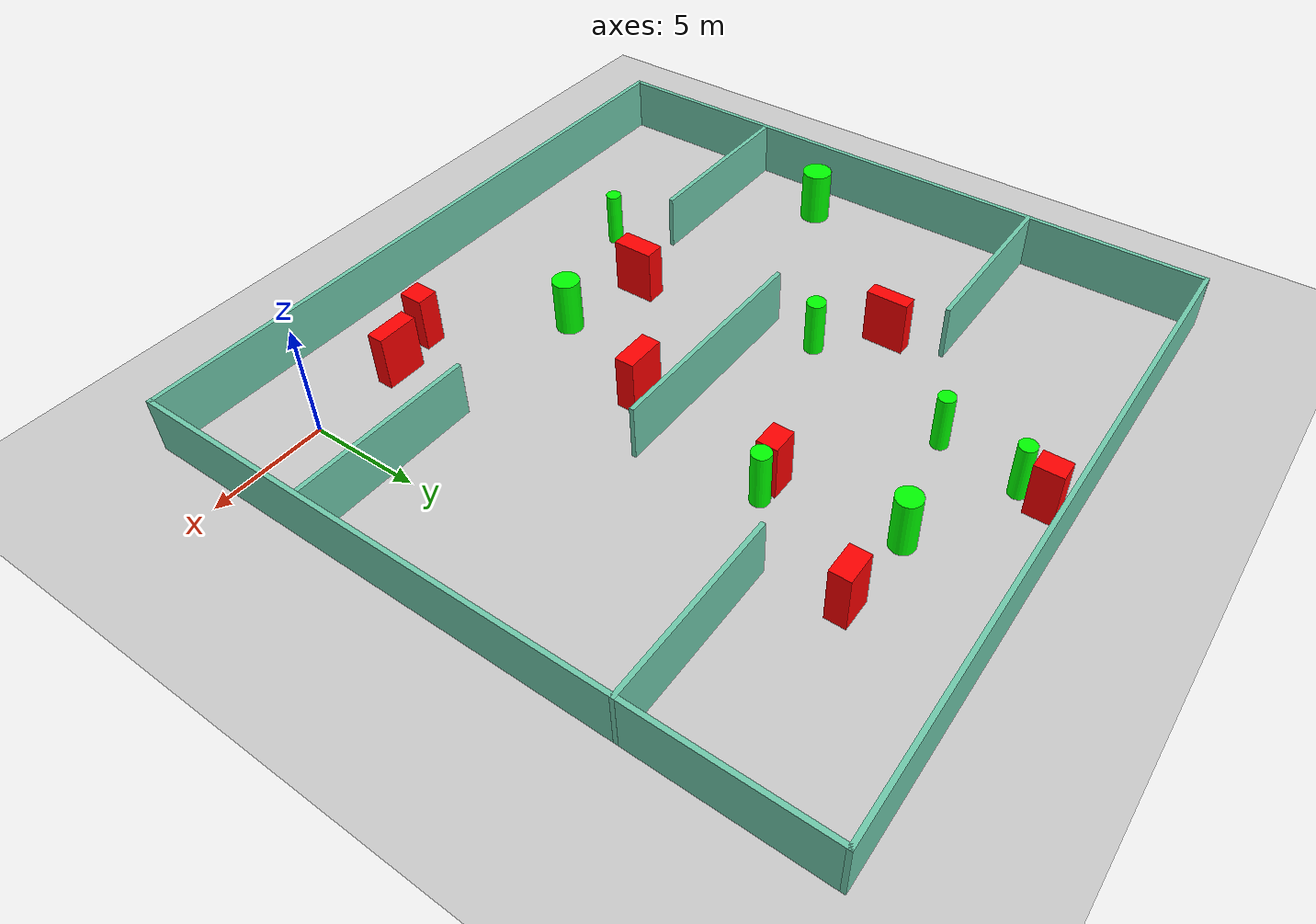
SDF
<sdf version="1.7">
 <world name="default">
  <light name="sun" type="directional">
   <pose>0 0 10 0 -0 0</pose>
   <diffuse>0.8 0.8 0.8 1</diffuse>
   <specular>0.2 0.2 0.2 1</specular>
   <attenuation>
    <range>1000</range>
    <constant>0.9</constant>
    <linear>0.01</linear>
    <quadratic>0.001</quadratic>
   </attenuation>
   <direction>-0.5 0.1 -0.9</direction>
   <spot><inner_angle>0</inner_angle><outer_angle>0</outer_angle><falloff>0</falloff></spot>
  </light>
  <model name="ground_plane">
   <static>1</static>
   <link name="link">
    <collision name="collision">
     <geometry><plane><normal>0 0 1</normal><size>100 100</size></plane></geometry>
     <surface>
      <contact><collide_bitmask>65535</collide_bitmask></contact>
      <friction><ode><mu>100</mu><mu2>50</mu2></ode></friction>
     </surface>
    </collision>
    <visual name="visual">
     <cast_shadows>0</cast_shadows>
     <geometry><plane><normal>0 0 1</normal><size>100 100</size></plane></geometry>
     <material>
      <script><uri>file://media/materials/scripts/gazebo.material</uri><name>Gazebo/Grey</name></script>
     </material>
    </visual>
   </link>
  </model>
  <gravity>0 0 -9.8</gravity>
  <magnetic_field>6e-06 2.3e-05 -4.2e-05</magnetic_field>
  <atmosphere type="adiabatic"/>
  <physics type="ode">
   <max_step_size>0.001</max_step_size>
   <real_time_factor>1</real_time_factor>
   <real_time_update_rate>1000</real_time_update_rate>
  </physics>
  <scene><ambient>0.4 0.4 0.4 1</ambient><background>0.7 0.7 0.7 1</background><shadows>1</shadows></scene>
  <spherical_coordinates>
   <surface_model>EARTH_WGS84</surface_model>
   <latitude_deg>0</latitude_deg>
   <longitude_deg>0</longitude_deg>
   <elevation>0</elevation>
   <heading_deg>0</heading_deg>
  </spherical_coordinates>
  <model name="my_base_walls">
   <link name="Wall_10">
    <collision name="Wall_10_Collision">
     <geometry><box><size>8.2 0.2 2.5</size></box></geometry>
     <pose>0 0 1.25 0 -0 0</pose>
    </collision>
    <visual name="Wall_10_Visual">
     <pose>0 0 1.25 0 -0 0</pose>
     <geometry><box><size>8.2 0.2 2.5</size></box></geometry>
     <material>
      <script><uri>file://media/materials/scripts/gazebo.material</uri><name>Gazebo/Grey</name></script>
      <ambient>0.435294 0.796078 0.67451 1</ambient>
     </material>
     <meta><layer>0</layer></meta>
    </visual>
    <pose>-11 -7 0 0 -0 0</pose>
   </link>
   <link name="Wall_12">
    <collision name="Wall_12_Collision">
     <geometry><box><size>8.2 0.2 2.5</size></box></geometry>
     <pose>0 0 1.25 0 -0 0</pose>
    </collision>
    <visual name="Wall_12_Visual">
     <pose>0 0 1.25 0 -0 0</pose>
     <geometry><box><size>8.2 0.2 2.5</size></box></geometry>
     <material>
      <script><uri>file://media/materials/scripts/gazebo.material</uri><name>Gazebo/Grey</name></script>
      <ambient>0.435294 0.796078 0.67451 1</ambient>
     </material>
     <meta><layer>0</layer></meta>
    </visual>
    <pose>-11 7 0 0 -0 0</pose>
   </link>
   <link name="Wall_14">
    <collision name="Wall_14_Collision">
     <geometry><box><size>8.2 0.2 2.5</size></box></geometry>
     <pose>0 0 1.25 0 -0 0</pose>
    </collision>
    <visual name="Wall_14_Visual">
     <pose>0 0 1.25 0 -0 0</pose>
     <geometry><box><size>8.2 0.2 2.5</size></box></geometry>
     <material>
      <script><uri>file://media/materials/scripts/gazebo.material</uri><name>Gazebo/Grey</name></script>
      <ambient>0.435294 0.796078 0.67451 1</ambient>
     </material>
     <meta><layer>0</layer></meta>
    </visual>
    <pose>11 7 0 0 -0 3.14159</pose>
   </link>
   <link name="Wall_16">
    <collision name="Wall_16_Collision">
     <geometry><box><size>10.2 0.2 2.5</size></box></geometry>
     <pose>0 0 1.25 0 -0 0</pose>
    </collision>
    <visual name="Wall_16_Visual">
     <pose>0 0 1.25 0 -0 0</pose>
     <geometry><box><size>10.2 0.2 2.5</size></box></geometry>
     <material>
      <script><uri>file://media/materials/scripts/gazebo.material</uri><name>Gazebo/Grey</name></script>
      <ambient>0.435294 0.796078 0.67451 1</ambient>
     </material>
     <meta><layer>0</layer></meta>
    </visual>
    <pose>0 0 0 0 -0 3.14159</pose>
   </link>
   <link name="Wall_2">
    <collision name="Wall_2_Collision">
     <geometry><box><size>30.2 0.2 2.5</size></box></geometry>
     <pose>0 0 1.25 0 -0 0</pose>
    </collision>
    <visual name="Wall_2_Visual">
     <pose>0 0 1.25 0 -0 0</pose>
     <geometry><box><size>30.2 0.2 2.5</size></box></geometry>
     <material>
      <script><uri>file://media/materials/scripts/gazebo.material</uri><name>Gazebo/Grey</name></script>
      <ambient>0.435294 0.796078 0.67451 1</ambient>
     </material>
     <meta><layer>0</layer></meta>
    </visual>
    <pose>0 -15 0 0 -0 3.14159</pose>
   </link>
   <link name="Wall_3">
    <collision name="Wall_3_Collision">
     <geometry><box><size>30.2 0.2 2.5</size></box></geometry>
     <pose>0 0 1.25 0 -0 0</pose>
    </collision>
    <visual name="Wall_3_Visual">
     <pose>0 0 1.25 0 -0 0</pose>
     <geometry><box><size>30.2 0.2 2.5</size></box></geometry>
     <material>
      <script><uri>file://media/materials/scripts/gazebo.material</uri><name>Gazebo/Grey</name></script>
      <ambient>0.435294 0.796078 0.67451 1</ambient>
     </material>
     <meta><layer>0</layer></meta>
    </visual>
    <pose>-15 0 0 0 -0 1.5708</pose>
   </link>
   <link name="Wall_4">
    <collision name="Wall_4_Collision">
     <geometry><box><size>30.2 0.2 2.5</size></box></geometry>
     <pose>0 0 1.25 0 -0 0</pose>
    </collision>
    <visual name="Wall_4_Visual">
     <pose>0 0 1.25 0 -0 0</pose>
     <geometry><box><size>30.2 0.2 2.5</size></box></geometry>
     <material>
      <script><uri>file://media/materials/scripts/gazebo.material</uri><name>Gazebo/Grey</name></script>
      <ambient>0.435294 0.796078 0.67451 1</ambient>
     </material>
     <meta><layer>0</layer></meta>
    </visual>
    <pose>0 15 0 0 -0 0</pose>
   </link>
   <link name="Wall_6">
    <collision name="Wall_6_Collision">
     <geometry><box><size>30.2 0.2 2.5</size></box></geometry>
     <pose>0 0 1.25 0 -0 0</pose>
    </collision>
    <visual name="Wall_6_Visual">
     <pose>0 0 1.25 0 -0 0</pose>
     <geometry><box><size>30.2 0.2 2.5</size></box></geometry>
     <material>
      <script><uri>file://media/materials/scripts/gazebo.material</uri><name>Gazebo/Grey</name></script>
      <ambient>0.435294 0.796078 0.67451 1</ambient>
     </material>
     <meta><layer>0</layer></meta>
    </visual>
    <pose>15 0 0 0 -0 1.5708</pose>
   </link>
   <link name="Wall_8">
    <collision name="Wall_8_Collision">
     <geometry><box><size>8.2 0.2 2.5</size></box></geometry>
     <pose>0 0 1.25 0 -0 0</pose>
    </collision>
    <visual name="Wall_8_Visual">
     <pose>0 0 1.25 0 -0 0</pose>
     <geometry><box><size>8.2 0.2 2.5</size></box></geometry>
     <material>
      <script><uri>file://media/materials/scripts/gazebo.material</uri><name>Gazebo/Grey</name></script>
      <ambient>0.435294 0.796078 0.67451 1</ambient>
     </material>
     <meta><layer>0</layer></meta>
    </visual>
    <pose>11 -7 0 0 -0 3.14159</pose>
   </link>
   <static>1</static>
   <pose>-11 11 0 0 -0 0</pose>
  </model>
  <model name="cylinder1">
   <static>1</static>
   <link name="link">
    <inertial>
     <mass>1</mass>
     <inertia><ixx>0.5</ixx><ixy>0</ixy><ixz>0</ixz><iyy>0.5</iyy><iyz>0</iyz><izz>1</izz></inertia>
    </inertial>
    <collision name="collision">
     <geometry><cylinder><radius>0.5934577134456529</radius><length>2.5</length></cylinder></geometry>
    </collision>
    <visual name="visual">
     <geometry><cylinder><radius>0.5934577134456529</radius><length>2.5</length></cylinder></geometry>
     <material>
      <ambient>0 1 0 1</ambient>
      <diffuse>0 1 0 1</diffuse>
      <specular>0.1 0.1 0.1 1</specular>
      <emissive>0 0 0 0</emissive>
     </material>
    </visual>
   </link>
   <pose>-10.554686615155568 3.928778182605912 1.25 0 0 0</pose>
  </model>
  <model name="cylinder2">
   <static>1</static>
   <link name="link">
    <inertial>
     <mass>1</mass>
     <inertia><ixx>0.5</ixx><ixy>0</ixy><ixz>0</ixz><iyy>0.5</iyy><iyz>0</iyz><izz>1</izz></inertia>
    </inertial>
    <collision name="collision">
     <geometry><cylinder><radius>0.3762466093813263</radius><length>2.5</length></cylinder></geometry>
    </collision>
    <visual name="visual">
     <geometry><cylinder><radius>0.3762466093813263</radius><length>2.5</length></cylinder></geometry>
     <material>
      <ambient>0 1 0 1</ambient>
      <diffuse>0 1 0 1</diffuse>
      <specular>0.1 0.1 0.1 1</specular>
      <emissive>0 0 0 0</emissive>
     </material>
    </visual>
   </link>
   <pose>-12.56087799316951 23.816988357291198 1.25 0 0 0</pose>
  </model>
  <model name="cylinder3">
   <static>1</static>
   <link name="link">
    <inertial>
     <mass>1</mass>
     <inertia><ixx>0.5</ixx><ixy>0</ixy><ixz>0</ixz><iyy>0.5</iyy><iyz>0</iyz><izz>1</izz></inertia>
    </inertial>
    <collision name="collision">
     <geometry><cylinder><radius>0.4168834310597556</radius><length>2.5</length></cylinder></geometry>
    </collision>
    <visual name="visual">
     <geometry><cylinder><radius>0.4168834310597556</radius><length>2.5</length></cylinder></geometry>
     <material>
      <ambient>0 1 0 1</ambient>
      <diffuse>0 1 0 1</diffuse>
      <specular>0.1 0.1 0.1 1</specular>
      <emissive>0 0 0 0</emissive>
     </material>
    </visual>
   </link>
   <pose>-15.300517209006669 13.342902669227236 1.25 0 0 0</pose>
  </model>
  <model name="cylinder4">
   <static>1</static>
   <link name="link">
    <inertial>
     <mass>1</mass>
     <inertia><ixx>0.5</ixx><ixy>0</ixy><ixz>0</ixz><iyy>0.5</iyy><iyz>0</iyz><izz>1</izz></inertia>
    </inertial>
    <collision name="collision">
     <geometry><cylinder><radius>0.6674258179555718</radius><length>2.5</length></cylinder></geometry>
    </collision>
    <visual name="visual">
     <geometry><cylinder><radius>0.6674258179555718</radius><length>2.5</length></cylinder></geometry>
     <material>
      <ambient>0 1 0 1</ambient>
      <diffuse>0 1 0 1</diffuse>
      <specular>0.1 0.1 0.1 1</specular>
      <emissive>0 0 0 0</emissive>
     </material>
    </visual>
   </link>
   <pose>-23.846942041362134 8.252241956023171 1.25 0 0 0</pose>
  </model>
  <model name="cylinder5">
   <static>1</static>
   <link name="link">
    <inertial>
     <mass>1</mass>
     <inertia><ixx>0.5</ixx><ixy>0</ixy><ixz>0</ixz><iyy>0.5</iyy><iyz>0</iyz><izz>1</izz></inertia>
    </inertial>
    <collision name="collision">
     <geometry><cylinder><radius>0.5339198987912293</radius><length>2.5</length></cylinder></geometry>
    </collision>
    <visual name="visual">
     <geometry><cylinder><radius>0.5339198987912293</radius><length>2.5</length></cylinder></geometry>
     <material>
      <ambient>0 1 0 1</ambient>
      <diffuse>0 1 0 1</diffuse>
      <specular>0.1 0.1 0.1 1</specular>
      <emissive>0 0 0 0</emissive>
     </material>
    </visual>
   </link>
   <pose>-7.91970805752192 21.480924488791636 1.25 0 0 0</pose>
  </model>
  <model name="cylinder6">
   <static>1</static>
   <link name="link">
    <inertial>
     <mass>1</mass>
     <inertia><ixx>0.5</ixx><ixy>0</ixy><ixz>0</ixz><iyy>0.5</iyy><iyz>0</iyz><izz>1</izz></inertia>
    </inertial>
    <collision name="collision">
     <geometry><cylinder><radius>0.3662983468133767</radius><length>2.5</length></cylinder></geometry>
    </collision>
    <visual name="visual">
     <geometry><cylinder><radius>0.3662983468133767</radius><length>2.5</length></cylinder></geometry>
     <material>
      <ambient>0 1 0 1</ambient>
      <diffuse>0 1 0 1</diffuse>
      <specular>0.1 0.1 0.1 1</specular>
      <emissive>0 0 0 0</emissive>
     </material>
    </visual>
   </link>
   <pose>-13.211196871625443 20.29187380965298 1.25 0 0 0</pose>
  </model>
  <model name="cylinder7">
   <static>1</static>
   <link name="link">
    <inertial>
     <mass>1</mass>
     <inertia><ixx>0.5</ixx><ixy>0</ixy><ixz>0</ixz><iyy>0.5</iyy><iyz>0</iyz><izz>1</izz></inertia>
    </inertial>
    <collision name="collision">
     <geometry><cylinder><radius>0.3403635555410657</radius><length>2.5</length></cylinder></geometry>
    </collision>
    <visual name="visual">
     <geometry><cylinder><radius>0.3403635555410657</radius><length>2.5</length></cylinder></geometry>
     <material>
      <ambient>0 1 0 1</ambient>
      <diffuse>0 1 0 1</diffuse>
      <specular>0.1 0.1 0.1 1</specular>
      <emissive>0 0 0 0</emissive>
     </material>
    </visual>
   </link>
   <pose>-16.75558954167352 1.5816555752412542 1.25 0 0 0</pose>
  </model>
  <model name="cylinder8">
   <static>1</static>
   <link name="link">
    <inertial>
     <mass>1</mass>
     <inertia><ixx>0.5</ixx><ixy>0</ixy><ixz>0</ixz><iyy>0.5</iyy><iyz>0</iyz><izz>1</izz></inertia>
    </inertial>
    <collision name="collision">
     <geometry><cylinder><radius>0.40949744792323656</radius><length>2.5</length></cylinder></geometry>
    </collision>
    <visual name="visual">
     <geometry><cylinder><radius>0.40949744792323656</radius><length>2.5</length></cylinder></geometry>
     <material>
      <ambient>0 1 0 1</ambient>
      <diffuse>0 1 0 1</diffuse>
      <specular>0.1 0.1 0.1 1</specular>
      <emissive>0 0 0 0</emissive>
     </material>
    </visual>
   </link>
   <pose>-6.800433649332099 16.16631894798791 1.25 0 0 0</pose>
  </model>
  <model name="box1">
   <static>1</static>
   <link name="link">
    <inertial>
     <mass>1</mass>
     <inertia><ixx>0.083</ixx><ixy>0</ixy><ixz>0</ixz><iyy>0.083</iyy><iyz>0</iyz><izz>0.083</izz></inertia>
    </inertial>
    <collision name="collision">
     <geometry><box><size>0.9213125164734528 1.1905165781016844 2.5</size></box></geometry>
    </collision>
    <visual name="visual">
     <geometry><box><size>0.9213125164734528 1.1905165781016844 2.5</size></box></geometry>
     <material>
      <ambient>1 0 0 1</ambient>
      <diffuse>1 0 0 1</diffuse>
      <specular>0.1 0.1 0.1 1</specular>
      <emissive>0 0 0 0</emissive>
     </material>
    </visual>
    <sensor name="my_contact" type="contact">
     <contact><collision>box_collision</collision><topic>__default_topic__</topic></contact>
    </sensor>
   </link>
   <pose>-12.199882175680735 24.94452833657662 1.25 0 0 0</pose>
  </model>
  <model name="box2">
   <static>1</static>
   <link name="link">
    <inertial>
     <mass>1</mass>
     <inertia><ixx>0.083</ixx><ixy>0</ixy><ixz>0</ixz><iyy>0.083</iyy><iyz>0</iyz><izz>0.083</izz></inertia>
    </inertial>
    <collision name="collision">
     <geometry><box><size>0.6605316910617933 1.8450154769421139 2.5</size></box></geometry>
    </collision>
    <visual name="visual">
     <geometry><box><size>0.6605316910617933 1.8450154769421139 2.5</size></box></geometry>
     <material>
      <ambient>1 0 0 1</ambient>
      <diffuse>1 0 0 1</diffuse>
      <specular>0.1 0.1 0.1 1</specular>
      <emissive>0 0 0 0</emissive>
     </material>
    </visual>
    <sensor name="my_contact" type="contact">
     <contact><collision>box_collision</collision><topic>__default_topic__</topic></contact>
    </sensor>
   </link>
   <pose>-17.412950002527076 15.633157648818038 1.25 0 0 0</pose>
  </model>
  <model name="box3">
   <static>1</static>
   <link name="link">
    <inertial>
     <mass>1</mass>
     <inertia><ixx>0.083</ixx><ixy>0</ixy><ixz>0</ixz><iyy>0.083</iyy><iyz>0</iyz><izz>0.083</izz></inertia>
    </inertial>
    <collision name="collision">
     <geometry><box><size>1.4023127020249437 0.8843671639223345 2.5</size></box></geometry>
    </collision>
    <visual name="visual">
     <geometry><box><size>1.4023127020249437 0.8843671639223345 2.5</size></box></geometry>
     <material>
      <ambient>1 0 0 1</ambient>
      <diffuse>1 0 0 1</diffuse>
      <specular>0.1 0.1 0.1 1</specular>
      <emissive>0 0 0 0</emissive>
     </material>
    </visual>
    <sensor name="my_contact" type="contact">
     <contact><collision>box_collision</collision><topic>__default_topic__</topic></contact>
    </sensor>
   </link>
   <pose>-4.2823103639580555 21.24320946071397 1.25 0 0 0</pose>
  </model>
  <model name="box4">
   <static>1</static>
   <link name="link">
    <inertial>
     <mass>1</mass>
     <inertia><ixx>0.083</ixx><ixy>0</ixy><ixz>0</ixz><iyy>0.083</iyy><iyz>0</iyz><izz>0.083</izz></inertia>
    </inertial>
    <collision name="collision">
     <geometry><box><size>0.9423559094984834 1.0834694214196983 2.5</size></box></geometry>
    </collision>
    <visual name="visual">
     <geometry><box><size>0.9423559094984834 1.0834694214196983 2.5</size></box></geometry>
     <material>
      <ambient>1 0 0 1</ambient>
      <diffuse>1 0 0 1</diffuse>
      <specular>0.1 0.1 0.1 1</specular>
      <emissive>0 0 0 0</emissive>
     </material>
    </visual>
    <sensor name="my_contact" type="contact">
     <contact><collision>box_collision</collision><topic>__default_topic__</topic></contact>
    </sensor>
   </link>
   <pose>-6.384481046437079 -0.5180764217471383 1.25 0 0 0</pose>
  </model>
  <model name="box5">
   <static>1</static>
   <link name="link">
    <inertial>
     <mass>1</mass>
     <inertia><ixx>0.083</ixx><ixy>0</ixy><ixz>0</ixz><iyy>0.083</iyy><iyz>0</iyz><izz>0.083</izz></inertia>
    </inertial>
    <collision name="collision">
     <geometry><box><size>1.7754728870680374 0.8523174261258706 2.5</size></box></geometry>
    </collision>
    <visual name="visual">
     <geometry><box><size>1.7754728870680374 0.8523174261258706 2.5</size></box></geometry>
     <material>
      <ambient>1 0 0 1</ambient>
      <diffuse>1 0 0 1</diffuse>
      <specular>0.1 0.1 0.1 1</specular>
      <emissive>0 0 0 0</emissive>
     </material>
    </visual>
    <sensor name="my_contact" type="contact">
     <contact><collision>box_collision</collision><topic>__default_topic__</topic></contact>
    </sensor>
   </link>
   <pose>-8.698992330274752 9.147279201854381 1.25 0 0 0</pose>
  </model>
  <model name="box6">
   <static>1</static>
   <link name="link">
    <inertial>
     <mass>1</mass>
     <inertia><ixx>0.083</ixx><ixy>0</ixy><ixz>0</ixz><iyy>0.083</iyy><iyz>0</iyz><izz>0.083</izz></inertia>
    </inertial>
    <collision name="collision">
     <geometry><box><size>1.8261742290124239 0.7335813535314547 2.5</size></box></geometry>
    </collision>
    <visual name="visual">
     <geometry><box><size>1.8261742290124239 0.7335813535314547 2.5</size></box></geometry>
     <material>
      <ambient>1 0 0 1</ambient>
      <diffuse>1 0 0 1</diffuse>
      <specular>0.1 0.1 0.1 1</specular>
      <emissive>0 0 0 0</emissive>
     </material>
    </visual>
    <sensor name="my_contact" type="contact">
     <contact><collision>box_collision</collision><topic>__default_topic__</topic></contact>
    </sensor>
   </link>
   <pose>-4.215068114862563 0.1726420498319734 1.25 0 0 0</pose>
  </model>
  <model name="box7">
   <static>1</static>
   <link name="link">
    <inertial>
     <mass>1</mass>
     <inertia><ixx>0.083</ixx><ixy>0</ixy><ixz>0</ixz><iyy>0.083</iyy><iyz>0</iyz><izz>0.083</izz></inertia>
    </inertial>
    <collision name="collision">
     <geometry><box><size>0.8884605614412557 1.8393177805523777 2.5</size></box></geometry>
    </collision>
    <visual name="visual">
     <geometry><box><size>0.8884605614412557 1.8393177805523777 2.5</size></box></geometry>
     <material>
      <ambient>1 0 0 1</ambient>
      <diffuse>1 0 0 1</diffuse>
      <specular>0.1 0.1 0.1 1</specular>
      <emissive>0 0 0 0</emissive>
     </material>
    </visual>
    <sensor name="my_contact" type="contact">
     <contact><collision>box_collision</collision><topic>__default_topic__</topic></contact>
    </sensor>
   </link>
   <pose>-14.31196307921389 4.872734943989951 1.25 0 0 0</pose>
  </model>
  <model name="box8">
   <static>1</static>
   <link name="link">
    <inertial>
     <mass>1</mass>
     <inertia><ixx>0.083</ixx><ixy>0</ixy><ixz>0</ixz><iyy>0.083</iyy><iyz>0</iyz><izz>0.083</izz></inertia>
    </inertial>
    <collision name="collision">
     <geometry><box><size>1.1550415402785363 0.9118236906855054 2.5</size></box></geometry>
    </collision>
    <visual name="visual">
     <geometry><box><size>1.1550415402785363 0.9118236906855054 2.5</size></box></geometry>
     <material>
      <ambient>1 0 0 1</ambient>
      <diffuse>1 0 0 1</diffuse>
      <specular>0.1 0.1 0.1 1</specular>
      <emissive>0 0 0 0</emissive>
     </material>
    </visual>
    <sensor name="my_contact" type="contact">
     <contact><collision>box_collision</collision><topic>__default_topic__</topic></contact>
    </sensor>
   </link>
   <pose>-7.756816162723947 16.13965739906424 1.25 0 0 0</pose>
  </model>
 </world>
</sdf>
